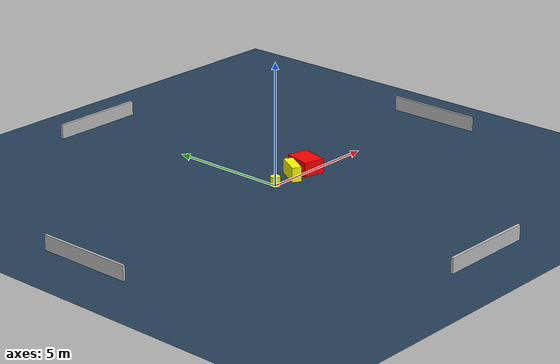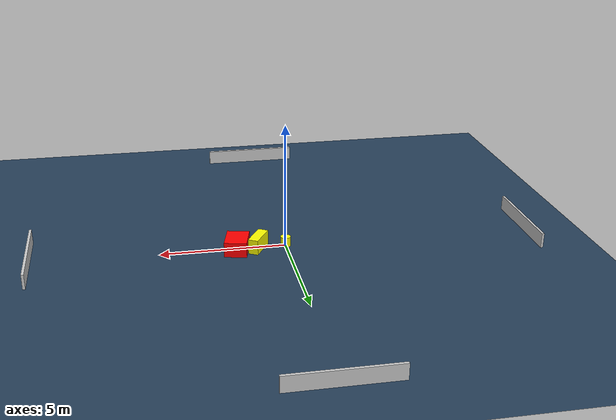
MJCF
<?xml version="1.0" ?>
<mujoco model="generated_environment">
  <option timestep="0.01" integrator="RK4" cone="elliptic"/>
  <default>
    <geom density="1"/>
  </default>
  <asset>
    <texture builtin="gradient" height="3072" name="skybox" rgb1="0.3 0.5 0.7" rgb2="0 0 0" type="skybox" width="512"/>
    <texture builtin="checker" height="300" name="groundplane" rgb1="0.2 0.3 0.4" rgb2="0.1 0.2 0.3" type="2d" width="300"/>
    <material name="groundplane" reflectance="0.2" texrepeat="5 5" texture="groundplane"/>
  </asset>
  <worldbody>
    <light dir="0 0 -1" directional="true" pos="0 0 1.5"/>
    <geom condim="3" friction="0.5 0.005 0.001" material="groundplane" name="floor" pos="0 0 0" size="0 0 0.05" type="plane"/>
    <body name="walls">
      <geom name="wall_1" condim="4" pos="-10.0 0.0 0.3" rgba="0.800000011920929 0.800000011920929 0.800000011920929 1.0" size="0.05 2.0 0.3" type="box"/>
      <geom name="wall_2" condim="4" pos="10.0 0.0 0.3" rgba="0.800000011920929 0.800000011920929 0.800000011920929 1.0" size="0.05 2.0 0.3" type="box"/>
      <geom name="wall_3" condim="4" pos="0.0 -10.0 0.3" rgba="0.800000011920929 0.800000011920929 0.800000011920929 1.0" size="2.0 0.05 0.3" type="box"/>
      <geom name="wall_4" condim="4" pos="0.0 10.0 0.3" rgba="0.800000011920929 0.800000011920929 0.800000011920929 1.0" size="2.0 0.05 0.3" type="box"/>
    </body>
    <body name="robot">
      <joint name="joint_x" type="slide" pos="0 0 0" axis="1 0 0"/>
      <joint name="joint_y" type="slide" pos="0 0 0" axis="0 1 0"/>
      <geom name="robot" type="cylinder" pos="0.0 0.0 0.2" size="0.2 0.2 0.0" mass="5.0" friction="1.0 0.005 0.0001" condim="4" rgba="1.0 1.0 0.0 1.0"/>
    </body>
    <body name="obstacle_1_movable">
      <geom name="obstacle_1_movable" condim="4" pos="1.1179004782613151 0.10350626256250803 0.3" euler="0 0 239.59799055046304" friction="0.0 0.005 0.001" rgba="1.0 1.0 0.0 1.0" size="0.5474600866193993 0.20124510048268687 0.3" type="box" mass="0.1"/>
      <joint type="free"/>
    </body>
    <body name="obstacle_2_static">
      <geom name="obstacle_2_static" condim="4" pos="1.9749700835157857 0.16581222064016324 0.3" euler="0 0 166.56252996252405" friction="0.0 0.005 0.001" rgba="1.0 0.0 0.0 1.0" size="0.443546900988111 0.5804305149452363 0.3" type="box"/>
    </body>
  </worldbody>
  <actuator>
    <motor name="actuator_x" joint="joint_x" gear="1" ctrlrange="-1 1"/>
    <motor name="actuator_y" joint="joint_y" gear="1" ctrlrange="-1 1"/>
  </actuator>
</mujoco>
